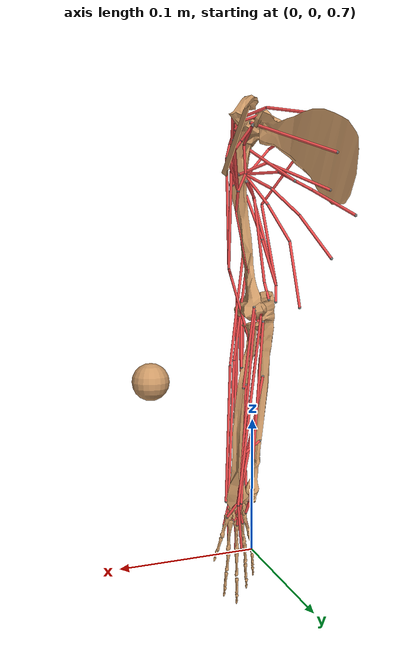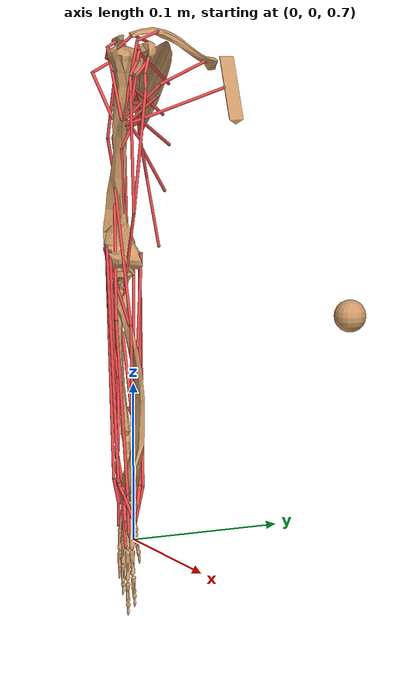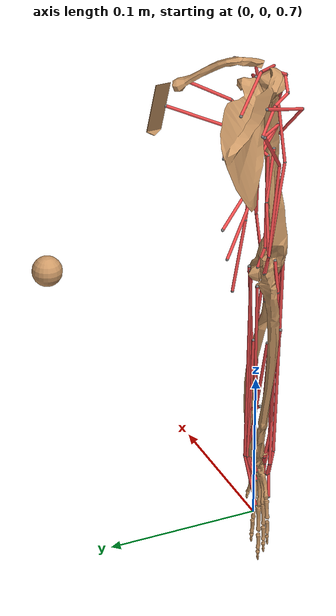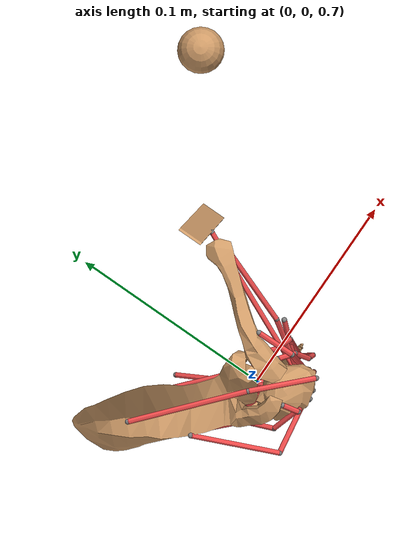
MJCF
<?xml version="1.0" encoding="utf-8"?>
<mujoco model="Monkey Arm Current">
  <compiler inertiafromgeom="auto" angle="radian" balanceinertia="true" boundmass="0.001" boundinertia="0.001">
    <lengthrange inttotal="500"></lengthrange>
  </compiler>
  <default>
    <joint limited="true" damping="0.5" armature="0.01" stiffness="0"></joint>
    <geom contype="1" conaffinity="1" condim="3" rgba="0.8 0.6 .4 1" margin="0.001" solref=".02 1" solimp=".8 .8 .01" material="geom"></geom>
    <site size="0.001"></site>
    <tendon width="0.001" rgba=".95 .3 .3 1" limited="false"></tendon>
    <default class="muscle">
      <muscle ctrllimited="true" ctrlrange="0 1" scale="400"></muscle>
    </default>
    <default class="motor">
      <motor gear="20"></motor>
    </default>
  </default>
  <option timestep="0.002" collision="predefined">
    <flag energy="enable"></flag>
  </option>
  <size njmax="1000" nconmax="400" nuser_jnt="1"></size>
  <visual>
    <map fogstart="3" fogend="5" force="0.1"></map>
    <quality shadowsize="2048"></quality>
  </visual>
  <worldbody>
    <geom name="floor" pos="0 0 0" size="10 10 0.125" type="plane" material="MatPlane" condim="3"></geom>
    <body name="sternum" pos="       0        0        1" quat="0.7071067811865475 0.7071067811865475 0.0 0.0">
      <light mode="trackcom" directional="false" diffuse=".8 .8 .8" specular="0.3 0.3 0.3" pos="0 0 4.0" dir="0 0 -1"></light>
      <geom name="sternum" type="mesh" mesh="sternum"></geom>
      <site name="pectoralis_inf-P1" pos="0.0331677 -0.0140839 -0.04725"></site>
      <site name="pectoralis_inf-P3" pos="0.0220229 -0.0186303 -0.00738581"></site>
      <body name="clavicle" pos="       0        0        0" quat="1.0 0.0 0.0 0.0">
        <geom name="clavicle" type="mesh" mesh="clavicle"></geom>
        <site name="deltoid_ant-P1" pos="0.0120089 0.0199837 -0.0123066"></site>
        <site name="pectoralis_sup-P1" pos="0.0296563 0.00221696 -0.0361728"></site>
        <site name="pectoralis_sup-P2" pos="0.0204415 -0.0117942 -0.00990533"></site>
        <body name="scapula" pos="       0        0        0" quat="1.0 0.0 0.0 0.0">
          <geom name="scapula" type="mesh" mesh="scapula"></geom>
          <site name="bicep_lh-P1" pos="-0.001415 0.0116716 -0.00421882"></site>
          <site name="bicep_sh-P1" pos="0.005006 0.00403096 -0.00928048"></site>
          <site name="coracobrachialis-P1" pos="0.00568137 0.00332641 -0.00985539"></site>
          <site name="coracobrachialis-P2" pos="0.00752866 -0.00741225 0.00049928"></site>
          <site name="deltoid_ant-P2" pos="0.0124096 0.0148434 0.00160382"></site>
          <site name="deltoid_med-P1" pos="-0.00413097 0.0134429 0.00897914"></site>
          <site name="deltoid_med-P2" pos="-0.00280437 0.0102632 0.0149334"></site>
          <site name="deltoid_pos-P1" pos="-0.031415 0.00518007 -0.0114773"></site>
          <site name="dorsoepitrochlearis-P1" pos="0.00803711 -0.0326048 -0.00556196"></site>
          <site name="infraspinatus-P1" pos="-0.0170813 -0.0336418 -0.0287667"></site>
          <site name="lat_dorsi_sup-P1" pos="-0.0518049 -0.05647 -0.0490717"></site>
          <site name="lat_dorsi_sup-P2" pos="-0.0343128 -0.0380677 -0.0208317"></site>
          <site name="lat_dorsi_sup-P3" pos="-0.0139569 -0.0257503 -0.0102175"></site>
          <site name="lat_dorsi_cen-P1" pos="-0.0395885 -0.0844117 -0.0400967"></site>
          <site name="lat_dorsi_cen-P2" pos="-0.0262124 -0.0547087 -0.0179488"></site>
          <site name="lat_dorsi_cen-P3" pos="-0.00923915 -0.0366063 -0.00847752"></site>
          <site name="lat_dorsi_inf-P1" pos="-0.02259 -0.117562 -0.0281918"></site>
          <site name="lat_dorsi_inf-P2" pos="-0.0190108 -0.0726375 -0.0183598"></site>
          <site name="lat_dorsi_inf-P3" pos="-0.00671568 -0.0475658 -0.00855742"></site>
          <site name="subscapularis-P1" pos="-0.0401794 -0.0163557 -0.0434123"></site>
          <site name="supraspinatus-P1" pos="-0.039969 0.00880497 -0.0325724"></site>
          <site name="supraspinatus-P2" pos="-0.00702282 0.017184 -0.00390647"></site>
          <site name="teres_major-P1" pos="-0.0448917 -0.0382902 -0.0269176"></site>
          <site name="teres_major-P2" pos="-0.00728912 -0.0192575 -0.00530986"></site>
          <site name="teres_minor-P1" pos="-0.0333031 -0.0109902 -0.0149465"></site>
          <site name="teres_minor-P2" pos="-0.0167974 -0.00165682 0.00096117"></site>
          <site name="teres_minor-P3" pos="-0.0125463 0.00302292 0.0114278"></site>
          <site name="tricep_lon-P1" pos="-0.0262697 -0.0160721 -0.0101192"></site>
          <body name="humerus" pos="       0    0.002    0.005" quat="1.0 0.0 0.0 0.0">
            <geom name="humerus" type="mesh" mesh="humerus"></geom>
            <inertial pos="       0  -0.0555        0" mass="0.203" fullinertia="0.000293 0.000173 0.000293        0        0        0"></inertial>
            <site name="anconeus-P1" pos="-0.00632836 -0.115053 0.00349906"></site>
            <site name="bicep_lh-P2" pos="0.00834146 0.00619877 -0.00662536"></site>
            <site name="bicep_lh-P3" pos="0.0137371 0.00030917 -0.00251563"></site>
            <site name="bicep_lh-P4" pos="0.0152399 -0.00829801 0.00267377"></site>
            <site name="bicep_lh-P5" pos="0.0173307 -0.0176342 0.00348195"></site>
            <site name="bicep_lh-P6" pos="0.01641 -0.09299 0.00122"></site>
            <site name="bicep_sh-P2" pos="0.0113466 -0.00789496 -0.0088837"></site>
            <site name="bicep_sh-P3" pos="0.0173119 -0.0163882 -0.00667662"></site>
            <site name="bicep_sh-P4" pos="0.01641 -0.09299 0.00122"></site>
            <site name="brachialis-P1" pos="0.00898936 -0.0531827 0.00609122"></site>
            <site name="brachioradialis-P1" pos="0.00241165 -0.0781182 0.00768392"></site>
            <site name="coracobrachialis-P3" pos="0.00537791 -0.0281937 -0.00207885"></site>
            <site name="coracobrachialis-P4" pos="0.0102654 -0.0399106 -0.00060604"></site>
            <site name="coracobrachialis-P5" pos="0.00898831 -0.0531843 0.00609106"></site>
            <site name="deltoid_ant-P3" pos="0.0114653 -0.0350968 0.00589031"></site>
            <site name="deltoid_med-P3" pos="0.0128964 -0.0349655 0.00764048"></site>
            <site name="deltoid_pos-P2" pos="-0.0186943 -0.00808775 0.0133007"></site>
            <site name="deltoid_pos-P3" pos="0.00512701 -0.0344488 0.0103991"></site>
            <site name="dorsoepitrochlearis-P2" pos="-0.00192344 -0.0439945 -0.00058018"></site>
            <site name="dorsoepitrochlearis-P3" pos="-0.00850242 -0.10306 -0.00470532"></site>
            <site name="ext_carpi_rad_longus-P1" pos="2.342e-005 -0.0882464 0.00696635"></site>
            <site name="ext_carp_rad_brevis-P1" pos="0.00495817 -0.113628 0.0146818"></site>
            <site name="ext_carpi_ulnaris-P1" pos="0.00495863 -0.116878 0.0122446"></site>
            <site name="ext_digitorum-P1" pos="0.0045054 -0.114854 0.0146524"></site>
            <site name="ext_digiti-P1" pos="0.0009439 -0.118829 0.0128691"></site>
            <site name="flex_carpi_radialis-P1" pos="0.00060897 -0.122704 -0.00973851"></site>
            <site name="flex_digit_superficialis-P1" pos="-0.00359 -0.12211 -0.01146"></site>
            <site name="infraspinatus-P2" pos="0.00656088 -0.00488467 0.0103085"></site>
            <site name="lat_dorsi_sup-P4" pos="0.00209131 -0.0269673 0.00787084"></site>
            <site name="lat_dorsi_cen-P4" pos="0.00227203 -0.0268108 0.00775898"></site>
            <site name="lat_dorsi_inf-P4" pos="0.00228779 -0.0268855 0.00768377"></site>
            <site name="palmaris_longus-P1" pos="-0.00359122 -0.122112 -0.0114664"></site>
            <site name="pectoralis_sup-P3" pos="0.00931889 -0.0352931 0.00326588"></site>
            <site name="pectoralis_inf-P2" pos="0.00893849 -0.0389993 0.00322279"></site>
            <site name="pronator_teres-P1" pos="0.00159854 -0.120028 -0.0102318"></site>
            <site name="subscapularis-P2" pos="0.00455369 0.00455243 -0.00853652"></site>
            <site name="supinator-P1" pos="0.00151058 -0.115482 0.0146201"></site>
            <site name="supraspinatus-P3" pos="0.0105423 0.00853244 0.00842501"></site>
            <site name="teres_major-P3" pos="0.00884004 -0.0284418 0.00066507"></site>
            <site name="teres_minor-P4" pos="-0.00295662 0.00754551 0.00927424"></site>
            <site name="tricep_lat-P1" pos="0.00343606 -0.0120452 0.00817807"></site>
            <site name="tricep_lat-P2" pos="-0.00661123 -0.0482261 0.00844396"></site>
            <site name="tricep_lat-P3" pos="-0.0169 -0.10497 -0.00623"></site>
            <site name="tricep_lon-P2" pos="-0.00945771 -0.0479589 0.00358659"></site>
            <site name="tricep_lon-P3" pos="-0.0169 -0.10497 -0.00623"></site>
            <site name="tricep_sho-P1" pos="0.00171795 -0.04211 0.00509713"></site>
            <site name="tricep_sho-P2" pos="-0.00706469 -0.0728094 -0.00347627"></site>
            <site name="tricep_sho-P3" pos="-0.0169 -0.10497 -0.00623"></site>
            <joint name="shoulder_adduction" type="hinge" pos="0 0 0" axis="       1        0        0" limited="false" range="-1.74533 0.872665" ref="0"></joint>
            <joint name="shoulder_rotation" type="hinge" pos="0 0 0" axis="       0        1        0" limited="false" range="-1.39626   1.5708" ref="0"></joint>
            <joint name="shoulder_flexion" type="hinge" pos="0 0 0" axis="       0        0        1" limited="false" range="  -1.309   1.5708" ref="0"></joint>
            <body name="ulna1" pos="       0   -0.125   -0.003" quat="1.0 0.0 0.0 0.0">
              <joint name="elbow_flexion" type="hinge" pos="0 0 0" axis="       0        0        1" limited="false" range="0.349066  2.44346" ref="0"></joint>
              <body name="ulna" pos="       0        0        0" quat="1.0 0.0 0.0 0.0">
                <geom name="ulna" type="mesh" mesh="ulna"></geom>
                <inertial pos="   0.004   -0.045    0.004" mass="0.0922" fullinertia="0.000143 2.07e-05 0.000143        0        0        0"></inertial>
                <site name="abd_poll_longus-P1" pos="-0.0134542 -0.036131 0.00779"></site>
                <site name="abd_poll_longus-P2" pos="-0.00589149 -0.0744007 0.00540344"></site>
                <site name="anconeus-P2" pos="-0.0095746 -0.0110556 0.00734644"></site>
                <site name="brachialis-P2" pos="-0.00689449 -0.0167103 -0.00011849"></site>
                <site name="dorsoepitrochlearis-P4" pos="-0.00976546 0.0101558 -0.0070947"></site>
                <site name="ext_indicis-P1" pos="-0.0106748 -0.0669418 0.00431148"></site>
                <site name="flex_carpi_ulnaris-P1" pos="-0.00626395 -0.00576911 -0.00528576"></site>
                <site name="flex_digit_profundus-P1" pos="-0.00910546 -0.0460418 0.00095037"></site>
                <site name="pronator_quad-P1" pos="-0.00609803 -0.0936326 -0.00163172"></site>
                <site name="tricep_lat-P4" pos="-0.0159459 0.00881669 -0.00513722"></site>
                <site name="tricep_lon-P4" pos="-0.0157669 0.00830524 -0.00558853"></site>
                <site name="tricep_sho-P4" pos="-0.0161454 0.00876453 -0.00503754"></site>
                <body name="radius_jcc" pos="       0   -0.008    0.005" quat="0.9998209174098923 0.01775660138237004 -0.00011621834917850029 0.0065439063474658">
                  <inertial pos="       0        0        0" mass="1e-06" fullinertia="   1e-07    1e-07    1e-07        0        0        0"></inertial>
                  <joint name="radial_pronation" type="hinge" pos="0 0 0" axis="       0        1        0" limited="false" range=" -1.5708   1.5708" ref="0"></joint>
                  <body name="radius" pos="       0        0        0" quat="0.9998209174098923 -0.01775660138237004 -0.00011621834917850029 -0.0065439063474658">
                    <geom name="radius" type="mesh" mesh="radius"></geom>
                    <inertial pos="   0.008   -0.045    0.008" mass="0.0618" fullinertia="9.53e-05 1.38e-06 9.53e-05        0        0        0"></inertial>
                    <site name="abd_poll_longus-P3" pos="0.00676938 -0.129509 0.00708684"></site>
                    <site name="bicep_lh-P7" pos="-0.0031344 -0.0226197 -0.00049658"></site>
                    <site name="bicep_sh-P5" pos="-0.00313456 -0.0226192 -0.00049636"></site>
                    <site name="brachioradialis-P2" pos="0.0145975 -0.0292495 0.00077764"></site>
                    <site name="brachioradialis-P3" pos="0.0176545 -0.132166 0.00106433"></site>
                    <site name="ext_carpi_rad_longus-P2" pos="0.00885958 -0.0269329 0.00814727"></site>
                    <site name="ext_carpi_rad_longus-P3" pos="0.01484 -0.13599 0.00375"></site>
                    <site name="ext_carp_rad_brevis-P2" pos="0.00892746 -0.129406 0.00735588"></site>
                    <site name="ext_carpi_ulnaris-P2" pos="-0.00025815 -0.135178 0.00378109"></site>
                    <site name="ext_digitorum-P2" pos="0.00823679 -0.129805 0.00699904"></site>
                    <site name="ext_digiti-P2" pos="0.00273506 -0.128023 0.00782584"></site>
                    <site name="ext_indicis-P2" pos="0.00266475 -0.11007 0.00567202"></site>
                    <site name="ext_indicis-P3" pos="0.00493 -0.13294 0.00262"></site>
                    <site name="flex_carpi_radialis-P2" pos="0.0108332 -0.131353 -0.00634294"></site>
                    <site name="flex_carpi_ulnaris-P2" pos="0.0016464 -0.131236 -0.00700539"></site>
                    <site name="flex_digit_profundus-P3" pos="0.0109418 -0.133962 -0.00656384"></site>
                    <site name="flex_digit_superficialis-P2" pos="0.0115119 -0.132662 -0.00824617"></site>
                    <site name="flex_poll_longus-P1" pos="0.005328 -0.0433027 -0.00663943"></site>
                    <site name="flex_poll_longus-P2" pos="0.0088 -0.13166 -0.00773"></site>
                    <site name="palmaris_longus-P2" pos="0.01058 -0.12709 -0.00689"></site>
                    <site name="palmaris_longus-P3" pos="0.0111999 -0.131741 -0.00604117"></site>
                    <site name="pronator_quad-P2" pos="0.00821347 -0.0959875 -0.00610373"></site>
                    <site name="pronator_teres-P2" pos="0.00720098 -0.0451973 -0.00693245"></site>
                    <site name="supinator-P2" pos="0.00675303 -0.031047 -0.00170358"></site>
                    <body name="radius1" pos="   0.007   -0.132  -0.0015" quat="0.9999999536033283 -0.0003046199952888821 0.0 0.0">
                      <body name="hand" pos="       0        0        0" quat="1.0 0.0 0.0 0.0">
                        <geom name="hand" type="mesh" mesh="hand"></geom>
                        <inertial pos="   0.012   -0.025    0.007" mass="0.049" fullinertia="3.82e-05 1.56e-06 3.82e-05        0        0        0"></inertial>
                        <site name="abd_poll_longus-P4" pos="0.00704809 -0.00538695 0.00708962"></site>
                        <site name="abd_poll_longus-P5" pos="0.0120716 -0.0190709 0.00350984"></site>
                        <site name="ext_carpi_rad_longus-P4" pos="0.00806575 -0.0297264 0.00471252"></site>
                        <site name="ext_carp_rad_brevis-P3" pos="0.00286125 -0.00820514 0.00535315"></site>
                        <site name="ext_carp_rad_brevis-P4" pos="0.00201083 -0.0285152 0.0042954"></site>
                        <site name="ext_carpi_ulnaris-P3" pos="-0.00529569 -0.0121079 0.00443402"></site>
                        <site name="ext_digitorum-P3" pos="0.00106101 -0.00804001 0.00594996"></site>
                        <site name="ext_digitorum-P4" pos="0.00222721 -0.0391191 0.00429738"></site>
                        <site name="ext_digiti-P3" pos="-0.00496082 -0.012152 0.00583044"></site>
                        <site name="ext_digiti-P4" pos="-0.00870747 -0.0274009 0.00430346"></site>
                        <site name="ext_indicis-P4" pos="0.0067409 -0.0213957 0.00653257"></site>
                        <site name="flex_carpi_radialis-P3" pos="0.0107732 -0.0114522 -0.0001884"></site>
                        <site name="flex_carpi_ulnaris-P3" pos="-0.00346201 -0.00910496 -0.0019235"></site>
                        <site name="flex_digit_profundus-P4" pos="-0.00139132 -0.0172483 -0.00108922"></site>
                        <site name="flex_digit_superficialis-P3" pos="-0.00060287 -0.0373804 -0.00082"></site>
                        <site name="flex_poll_longus-P3" pos="0.00316994 -0.018195 -0.00122613"></site>
                        <site name="palmaris_longus-P4" pos="0.00062154 -0.0123001 -0.001955"></site>
                        <joint name="wrist_flexion" type="hinge" pos="0 0 0" axis="       1        0        0" limited="false" range="  -1.309   1.5708" ref="0"></joint>
                        <joint name="wrist_abduction" type="hinge" pos="0 0 0" axis="       0        0        1" limited="false" range=" -1.0472 0.785398" ref="0"></joint>
                      </body>
                    </body>
                  </body>
                </body>
              </body>
            </body>
          </body>
        </body>
      </body>
    </body>
    <camera name="for_testing" pos="0 0 0" euler="0 0 0"></camera>
	<body name="target" pos="0.1 0.1 0.85">
		<geom size="0.01 0.01 0.01" type="sphere"/>
		<joint axis="1 0 0" name="box:x" type="slide" limited="false" range="-6.28319  6.28319"></joint>
        <joint axis="0 0 1" name="box:y" type="slide" limited="false" range="-6.28319  6.28319"></joint>
    </body>
  </worldbody>
  <asset>
    <mesh name="sternum" file="Geometry/sternum.stl" scale="   0.001    0.001    0.001"></mesh>
    <mesh name="clavicle" file="Geometry/clavicle.stl" scale="   0.001    0.001    0.001"></mesh>
    <mesh name="scapula" file="Geometry/scapula.stl" scale="   0.001    0.001    0.001"></mesh>
    <mesh name="humerus" file="Geometry/humerus.stl" scale="   0.001    0.001    0.001"></mesh>
    <mesh name="ulna" file="Geometry/ulna.stl" scale="   0.001    0.001    0.001"></mesh>
    <mesh name="radius" file="Geometry/radius.stl" scale="   0.001    0.001    0.001"></mesh>
    <mesh name="hand" file="Geometry/hand.stl" scale="   0.001    0.001    0.001"></mesh>
    <texture name="texplane" type="2d" builtin="checker" rgb1=".2 .3 .4" rgb2=".1 0.15 0.2" width="100" height="100"></texture>
    <texture name="texgeom" type="cube" builtin="flat" mark="cross" width="127" height="1278" rgb1="0.8 0.6 0.4" rgb2="0.8 0.6 0.4" markrgb="1 1 1" random="0.01"></texture>
    <material name="MatPlane" reflectance="0.5" texture="texplane" texrepeat="1 1" texuniform="true"></material>
    <material name="geom" texture="texgeom" texuniform="true"></material>
  </asset>
  <tendon>
    <spatial name="abd_poll_longus_tendon" springlength="0.0285" damping="0.05">
      <site site="abd_poll_longus-P1"></site>
      <site site="abd_poll_longus-P2"></site>
      <site site="abd_poll_longus-P3"></site>
      <site site="abd_poll_longus-P4"></site>
      <site site="abd_poll_longus-P5"></site>
    </spatial>
    <spatial name="anconeus_tendon" springlength="0.019627" damping="0.05">
      <site site="anconeus-P1"></site>
      <site site="anconeus-P2"></site>
    </spatial>
    <spatial name="bicep_lh_tendon" springlength="0.070845" damping="0.05">
      <site site="bicep_lh-P1"></site>
      <site site="bicep_lh-P2"></site>
      <site site="bicep_lh-P3"></site>
      <site site="bicep_lh-P4"></site>
      <site site="bicep_lh-P5"></site>
      <site site="bicep_lh-P6"></site>
      <site site="bicep_lh-P7"></site>
    </spatial>
    <spatial name="bicep_sh_tendon" springlength="0.042526" damping="0.05">
      <site site="bicep_sh-P1"></site>
      <site site="bicep_sh-P2"></site>
      <site site="bicep_sh-P3"></site>
      <site site="bicep_sh-P4"></site>
      <site site="bicep_sh-P5"></site>
    </spatial>
    <spatial name="brachialis_tendon" springlength="0.03502" damping="0.05">
      <site site="brachialis-P1"></site>
      <site site="brachialis-P2"></site>
    </spatial>
    <spatial name="brachioradialis_tendon" springlength="0.04335" damping="0.05">
      <site site="brachioradialis-P1"></site>
      <site site="brachioradialis-P2"></site>
      <site site="brachioradialis-P3"></site>
    </spatial>
    <spatial name="coracobrachialis_tendon" springlength="0.002" damping="0.05">
      <site site="coracobrachialis-P1"></site>
      <site site="coracobrachialis-P2"></site>
      <site site="coracobrachialis-P3"></site>
      <site site="coracobrachialis-P4"></site>
      <site site="coracobrachialis-P5"></site>
    </spatial>
    <spatial name="deltoid_ant_tendon" springlength="0.002" damping="0.05">
      <site site="deltoid_ant-P1"></site>
      <site site="deltoid_ant-P2"></site>
      <site site="deltoid_ant-P3"></site>
    </spatial>
    <spatial name="deltoid_med_tendon" springlength="0.002" damping="0.05">
      <site site="deltoid_med-P1"></site>
      <site site="deltoid_med-P2"></site>
      <site site="deltoid_med-P3"></site>
    </spatial>
    <spatial name="deltoid_pos_tendon" springlength="0.002" damping="0.05">
      <site site="deltoid_pos-P1"></site>
      <site site="deltoid_pos-P2"></site>
      <site site="deltoid_pos-P3"></site>
    </spatial>
    <spatial name="dorsoepitrochlearis_tendon" springlength="0.039172" damping="0.05">
      <site site="dorsoepitrochlearis-P1"></site>
      <site site="dorsoepitrochlearis-P2"></site>
      <site site="dorsoepitrochlearis-P3"></site>
      <site site="dorsoepitrochlearis-P4"></site>
    </spatial>
    <spatial name="ext_carpi_rad_longus_tendon" springlength="0.055" damping="0.05">
      <site site="ext_carpi_rad_longus-P1"></site>
      <site site="ext_carpi_rad_longus-P2"></site>
      <site site="ext_carpi_rad_longus-P3"></site>
      <site site="ext_carpi_rad_longus-P4"></site>
    </spatial>
    <spatial name="ext_carp_rad_brevis_tendon" springlength="0.0365" damping="0.05">
      <site site="ext_carp_rad_brevis-P1"></site>
      <site site="ext_carp_rad_brevis-P2"></site>
      <site site="ext_carp_rad_brevis-P3"></site>
      <site site="ext_carp_rad_brevis-P4"></site>
    </spatial>
    <spatial name="ext_carpi_ulnaris_tendon" springlength="0.050385" damping="0.05">
      <site site="ext_carpi_ulnaris-P1"></site>
      <site site="ext_carpi_ulnaris-P2"></site>
      <site site="ext_carpi_ulnaris-P3"></site>
    </spatial>
    <spatial name="ext_digitorum_tendon" springlength="0.0457" damping="0.05">
      <site site="ext_digitorum-P1"></site>
      <site site="ext_digitorum-P2"></site>
      <site site="ext_digitorum-P3"></site>
      <site site="ext_digitorum-P4"></site>
    </spatial>
    <spatial name="ext_digiti_tendon" springlength="0.0603" damping="0.05">
      <site site="ext_digiti-P1"></site>
      <site site="ext_digiti-P2"></site>
      <site site="ext_digiti-P3"></site>
      <site site="ext_digiti-P4"></site>
    </spatial>
    <spatial name="ext_indicis_tendon" springlength="0.030981" damping="0.05">
      <site site="ext_indicis-P1"></site>
      <site site="ext_indicis-P2"></site>
      <site site="ext_indicis-P3"></site>
      <site site="ext_indicis-P4"></site>
    </spatial>
    <spatial name="flex_carpi_radialis_tendon" springlength="0.042532" damping="0.05">
      <site site="flex_carpi_radialis-P1"></site>
      <site site="flex_carpi_radialis-P2"></site>
      <site site="flex_carpi_radialis-P3"></site>
    </spatial>
    <spatial name="flex_carpi_ulnaris_tendon" springlength="0.122492" damping="0.05">
      <site site="flex_carpi_ulnaris-P1"></site>
      <site site="flex_carpi_ulnaris-P2"></site>
      <site site="flex_carpi_ulnaris-P3"></site>
    </spatial>
    <spatial name="flex_digit_profundus_tendon" springlength="0.04029373" damping="0.05">
      <site site="flex_digit_profundus-P1"></site>
      <site site="flex_digit_profundus-P3"></site>
      <site site="flex_digit_profundus-P4"></site>
    </spatial>
    <spatial name="flex_digit_superficialis_tendon" springlength="0.072174" damping="0.05">
      <site site="flex_digit_superficialis-P1"></site>
      <site site="flex_digit_superficialis-P2"></site>
      <site site="flex_digit_superficialis-P3"></site>
    </spatial>
    <spatial name="flex_poll_longus_tendon" springlength="0.060818" damping="0.05">
      <site site="flex_poll_longus-P1"></site>
      <site site="flex_poll_longus-P2"></site>
      <site site="flex_poll_longus-P3"></site>
    </spatial>
    <spatial name="infraspinatus_tendon" springlength="0.002" damping="0.05">
      <site site="infraspinatus-P1"></site>
      <site site="infraspinatus-P2"></site>
    </spatial>
    <spatial name="lat_dorsi_sup_tendon" springlength="0.002" damping="0.05">
      <site site="lat_dorsi_sup-P1"></site>
      <site site="lat_dorsi_sup-P2"></site>
      <site site="lat_dorsi_sup-P3"></site>
      <site site="lat_dorsi_sup-P4"></site>
    </spatial>
    <spatial name="lat_dorsi_cen_tendon" springlength="0.002" damping="0.05">
      <site site="lat_dorsi_cen-P1"></site>
      <site site="lat_dorsi_cen-P2"></site>
      <site site="lat_dorsi_cen-P3"></site>
      <site site="lat_dorsi_cen-P4"></site>
    </spatial>
    <spatial name="lat_dorsi_inf_tendon" springlength="0.0087" damping="0.05">
      <site site="lat_dorsi_inf-P1"></site>
      <site site="lat_dorsi_inf-P2"></site>
      <site site="lat_dorsi_inf-P3"></site>
      <site site="lat_dorsi_inf-P4"></site>
    </spatial>
    <spatial name="palmaris_longus_tendon" springlength="0.023407" damping="0.05">
      <site site="palmaris_longus-P1"></site>
      <site site="palmaris_longus-P2"></site>
      <site site="palmaris_longus-P3"></site>
      <site site="palmaris_longus-P4"></site>
    </spatial>
    <spatial name="pectoralis_sup_tendon" springlength="0.002" damping="0.05">
      <site site="pectoralis_sup-P1"></site>
      <site site="pectoralis_sup-P2"></site>
      <site site="pectoralis_sup-P3"></site>
    </spatial>
    <spatial name="apectoralis_inf_tendon" springlength="0.002" damping="0.05">
      <site site="pectoralis_inf-P1"></site>
      <site site="pectoralis_inf-P2"></site>
      <site site="pectoralis_inf-P3"></site>
    </spatial>
    <spatial name="pronator_quad_tendon" springlength="0.002" damping="0.05">
      <site site="pronator_quad-P1"></site>
      <site site="pronator_quad-P2"></site>
    </spatial>
    <spatial name="pronator_teres_tendon" springlength="0.01254" damping="0.05">
      <site site="pronator_teres-P1"></site>
      <site site="pronator_teres-P2"></site>
    </spatial>
    <spatial name="subscapularis_tendon" springlength="0.008831" damping="0.05">
      <site site="subscapularis-P1"></site>
      <site site="subscapularis-P2"></site>
    </spatial>
    <spatial name="supinator_tendon" springlength="0.002" damping="0.05">
      <site site="supinator-P1"></site>
      <site site="supinator-P2"></site>
    </spatial>
    <spatial name="supraspinatus_tendon" springlength="0.002" damping="0.05">
      <site site="supraspinatus-P1"></site>
      <site site="supraspinatus-P2"></site>
      <site site="supraspinatus-P3"></site>
    </spatial>
    <spatial name="teres_major_tendon" springlength="0.002" damping="0.05">
      <site site="teres_major-P1"></site>
      <site site="teres_major-P2"></site>
      <site site="teres_major-P3"></site>
    </spatial>
    <spatial name="teres_minor_tendon" springlength="0.002" damping="0.05">
      <site site="teres_minor-P1"></site>
      <site site="teres_minor-P2"></site>
      <site site="teres_minor-P3"></site>
      <site site="teres_minor-P4"></site>
    </spatial>
    <spatial name="tricep_lat_tendon" springlength="0.018409" damping="0.05">
      <site site="tricep_lat-P1"></site>
      <site site="tricep_lat-P2"></site>
      <site site="tricep_lat-P3"></site>
      <site site="tricep_lat-P4"></site>
    </spatial>
    <spatial name="tricep_lon_tendon" springlength="0.036031" damping="0.05">
      <site site="tricep_lon-P1"></site>
      <site site="tricep_lon-P2"></site>
      <site site="tricep_lon-P3"></site>
      <site site="tricep_lon-P4"></site>
    </spatial>
    <spatial name="tricep_sho_tendon" springlength="0.010198" damping="0.05">
      <site site="tricep_sho-P1"></site>
      <site site="tricep_sho-P2"></site>
      <site site="tricep_sho-P3"></site>
      <site site="tricep_sho-P4"></site>
    </spatial>
  </tendon>
  <actuator>
    <muscle name="abd_poll_longus" tendon="abd_poll_longus_tendon" class="muscle" lengthrange="0.000002325     30.72" timeconst="  0.7667 0.145985" ctrllimited="true" ctrlrange="       0.0002        1"></muscle>
    <muscle name="anconeus" tendon="anconeus_tendon" class="muscle" lengthrange="0.000002325     30.72" timeconst="  0.7667 0.145985" ctrllimited="true" ctrlrange="       0.0002        1"></muscle>
    <muscle name="bicep_lh" tendon="bicep_lh_tendon" class="muscle" lengthrange="0.000002325     30.72" timeconst="  0.7667 0.145985" ctrllimited="true" ctrlrange="       0.0002        1"></muscle>
    <muscle name="bicep_sh" tendon="bicep_sh_tendon" class="muscle" lengthrange="0.000002325     30.72" timeconst="  0.7667 0.145985" ctrllimited="true" ctrlrange="       0.0002        1"></muscle>
    <muscle name="brachialis" tendon="brachialis_tendon" class="muscle" lengthrange="0.000002325     30.72" timeconst="  0.7667 0.145985" ctrllimited="true" ctrlrange="       0.0002        1"></muscle>
    <muscle name="brachioradialis" tendon="brachioradialis_tendon" class="muscle" lengthrange="0.000002325     30.72" timeconst="  0.7667 0.145985" ctrllimited="true" ctrlrange="       0.0002        1"></muscle>
    <muscle name="coracobrachialis" tendon="coracobrachialis_tendon" class="muscle" lengthrange="0.000002325     30.72" timeconst="  0.7667 0.145985" ctrllimited="true" ctrlrange="       0.0002        1"></muscle>
    <muscle name="deltoid_ant" tendon="deltoid_ant_tendon" class="muscle" lengthrange="0.000002325     30.72" timeconst="  0.7667 0.145985" ctrllimited="true" ctrlrange="       0.0002        1"></muscle>
    <muscle name="deltoid_med" tendon="deltoid_med_tendon" class="muscle" lengthrange="0.000002325     30.72" timeconst="  0.7667 0.145985" ctrllimited="true" ctrlrange="       0.0002        1"></muscle>
    <muscle name="deltoid_pos" tendon="deltoid_pos_tendon" class="muscle" lengthrange="0.000002325     30.72" timeconst="  0.7667 0.145985" ctrllimited="true" ctrlrange="       0.0002        1"></muscle>
    <muscle name="dorsoepitrochlearis" tendon="dorsoepitrochlearis_tendon" class="muscle" lengthrange="0.000002325     30.72" timeconst="  0.7667 0.145985" ctrllimited="true" ctrlrange="       0.0002        1"></muscle>
    <muscle name="ext_carpi_rad_longus" tendon="ext_carpi_rad_longus_tendon" class="muscle" lengthrange="0.000002325     30.72" timeconst="  0.7667 0.145985" ctrllimited="true" ctrlrange="       0.0002        1"></muscle>
    <muscle name="ext_carp_rad_brevis" tendon="ext_carp_rad_brevis_tendon" class="muscle" lengthrange="0.000002325     30.72" timeconst="  0.7667 0.145985" ctrllimited="true" ctrlrange="       0.0002        1"></muscle>
    <muscle name="ext_carpi_ulnaris" tendon="ext_carpi_ulnaris_tendon" class="muscle" lengthrange="0.000002325     30.72" timeconst="  0.7667 0.145985" ctrllimited="true" ctrlrange="       0.0002        1"></muscle>
    <muscle name="ext_digitorum" tendon="ext_digitorum_tendon" class="muscle" lengthrange="0.000002325     30.72" timeconst="  0.7667 0.145985" ctrllimited="true" ctrlrange="       0.0002        1"></muscle>
    <muscle name="ext_digiti" tendon="ext_digiti_tendon" class="muscle" lengthrange="0.000002325     30.72" timeconst="  0.7667 0.145985" ctrllimited="true" ctrlrange="       0.0002        1"></muscle>
    <muscle name="ext_indicis" tendon="ext_indicis_tendon" class="muscle" lengthrange="0.000002325     30.72" timeconst="  0.7667 0.145985" ctrllimited="true" ctrlrange="       0.0002        1"></muscle>
    <muscle name="flex_carpi_radialis" tendon="flex_carpi_radialis_tendon" class="muscle" lengthrange="0.000002325     30.72" timeconst="  0.7667 0.145985" ctrllimited="true" ctrlrange="       0.0002        1"></muscle>
    <muscle name="flex_carpi_ulnaris" tendon="flex_carpi_ulnaris_tendon" class="muscle" lengthrange="0.000002325     30.72" timeconst="  0.7667 0.145985" ctrllimited="true" ctrlrange="       0.0002        1"></muscle>
    <muscle name="flex_digit_profundus" tendon="flex_digit_profundus_tendon" class="muscle" lengthrange="0.000002325     30.72" timeconst="  0.7667 0.145985" ctrllimited="true" ctrlrange="       0.0002        1"></muscle>
    <muscle name="flex_digit_superficialis" tendon="flex_digit_superficialis_tendon" class="muscle" lengthrange="0.000002325     30.72" timeconst="  0.7667 0.145985" ctrllimited="true" ctrlrange="       0.0002        1"></muscle>
    <muscle name="flex_poll_longus" tendon="flex_poll_longus_tendon" class="muscle" lengthrange="0.000002325     30.72" timeconst="  0.7667 0.145985" ctrllimited="true" ctrlrange="       0.0002        1"></muscle>
    <muscle name="infraspinatus" tendon="infraspinatus_tendon" class="muscle" lengthrange="0.000002325     30.72" timeconst="  0.7667 0.145985" ctrllimited="true" ctrlrange="       0.0002        1"></muscle>
    <muscle name="lat_dorsi_sup" tendon="lat_dorsi_sup_tendon" class="muscle" lengthrange="0.000002325     30.72" timeconst="  0.7667 0.145985" ctrllimited="true" ctrlrange="       0.0002        1"></muscle>
    <muscle name="lat_dorsi_cen" tendon="lat_dorsi_cen_tendon" class="muscle" lengthrange="0.000002325     30.72" timeconst="  0.7667 0.145985" ctrllimited="true" ctrlrange="       0.0002        1"></muscle>
    <muscle name="lat_dorsi_inf" tendon="lat_dorsi_inf_tendon" class="muscle" lengthrange="0.000002325     30.72" timeconst="  0.7667 0.145985" ctrllimited="true" ctrlrange="       0.0002        1"></muscle>
    <muscle name="palmaris_longus" tendon="palmaris_longus_tendon" class="muscle" lengthrange="0.000002325     30.72" timeconst="  0.7667 0.145985" ctrllimited="true" ctrlrange="       0.0002        1"></muscle>
    <muscle name="pectoralis_sup" tendon="pectoralis_sup_tendon" class="muscle" lengthrange="0.000002325     30.72" timeconst="  0.7667 0.145985" ctrllimited="true" ctrlrange="       0.0002        1"></muscle>
    <muscle name="apectoralis_inf" tendon="apectoralis_inf_tendon" class="muscle" lengthrange="0.000002325     30.72" timeconst="  0.7667 0.145985" ctrllimited="true" ctrlrange="       0.0002        1"></muscle>
    <muscle name="pronator_quad" tendon="pronator_quad_tendon" class="muscle" lengthrange="0.000002325     30.72" timeconst="  0.7667 0.145985" ctrllimited="true" ctrlrange="       0.0002        1"></muscle>
    <muscle name="pronator_teres" tendon="pronator_teres_tendon" class="muscle" lengthrange="0.000002325     30.72" timeconst="  0.7667 0.145985" ctrllimited="true" ctrlrange="       0.0002        1"></muscle>
    <muscle name="subscapularis" tendon="subscapularis_tendon" class="muscle" lengthrange="0.000002325     30.72" timeconst="  0.7667 0.145985" ctrllimited="true" ctrlrange="       0.0002        1"></muscle>
    <muscle name="supinator" tendon="supinator_tendon" class="muscle" lengthrange="0.000002325     30.72" timeconst="  0.7667 0.145985" ctrllimited="true" ctrlrange="       0.0002        1"></muscle>
    <muscle name="supraspinatus" tendon="supraspinatus_tendon" class="muscle" lengthrange="0.000002325     30.72" timeconst="  0.7667 0.145985" ctrllimited="true" ctrlrange="       0.0002        1"></muscle>
    <muscle name="teres_major" tendon="teres_major_tendon" class="muscle" lengthrange="0.000002325     30.72" timeconst="  0.7667 0.145985" ctrllimited="true" ctrlrange="       0.0002        1"></muscle>
    <muscle name="teres_minor" tendon="teres_minor_tendon" class="muscle" lengthrange="0.000002325     30.72" timeconst="  0.7667 0.145985" ctrllimited="true" ctrlrange="       0.0002        1"></muscle>
    <muscle name="tricep_lat" tendon="tricep_lat_tendon" class="muscle" lengthrange="0.000002325     30.72" timeconst="  0.7667 0.145985" ctrllimited="true" ctrlrange="       0.0002        1"></muscle>
    <muscle name="tricep_lon" tendon="tricep_lon_tendon" class="muscle" lengthrange="0.000002325     30.72" timeconst="  0.7667 0.145985" ctrllimited="true" ctrlrange="       0.0002        1"></muscle>
    <muscle name="tricep_sho" tendon="tricep_sho_tendon" class="muscle" lengthrange="0.000002325     30.72" timeconst="  0.7667 0.145985" ctrllimited="true" ctrlrange="       0.0002        1"></muscle>
  </actuator>
  <equality>
    <weld name="origin_to_worldbody" body1="sternum" active="false"></weld>
  </equality>
</mujoco>
